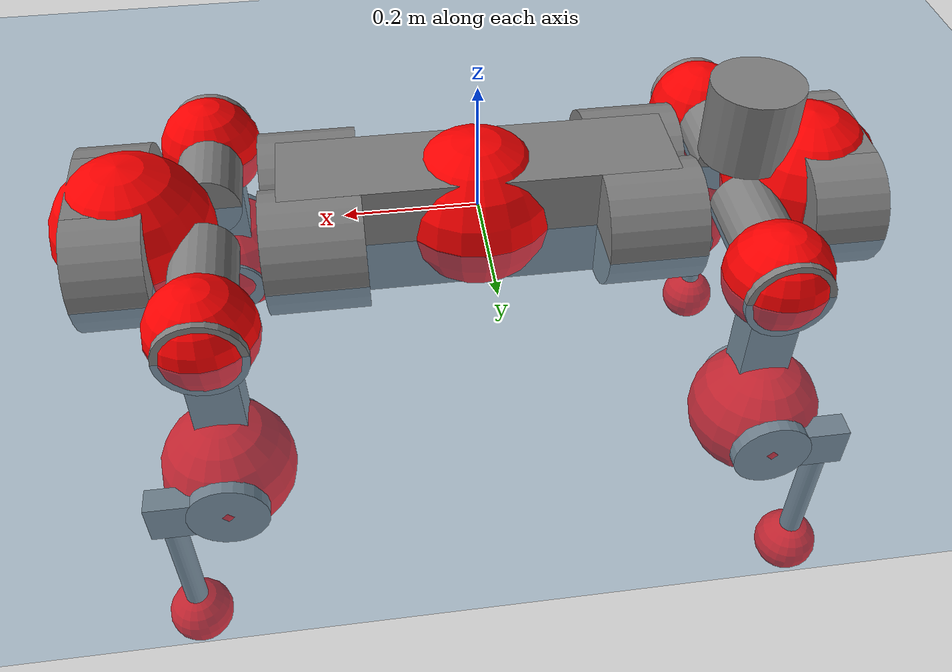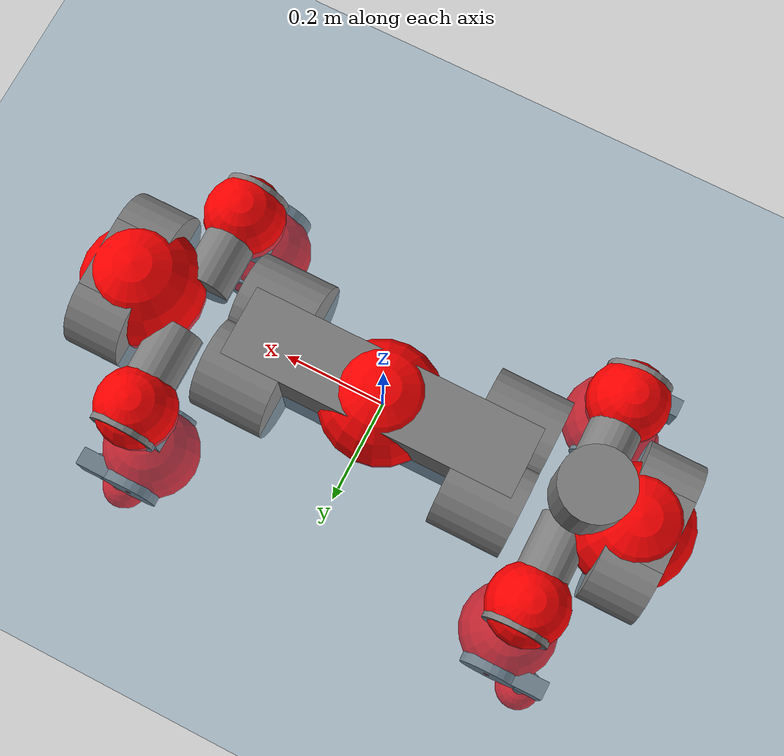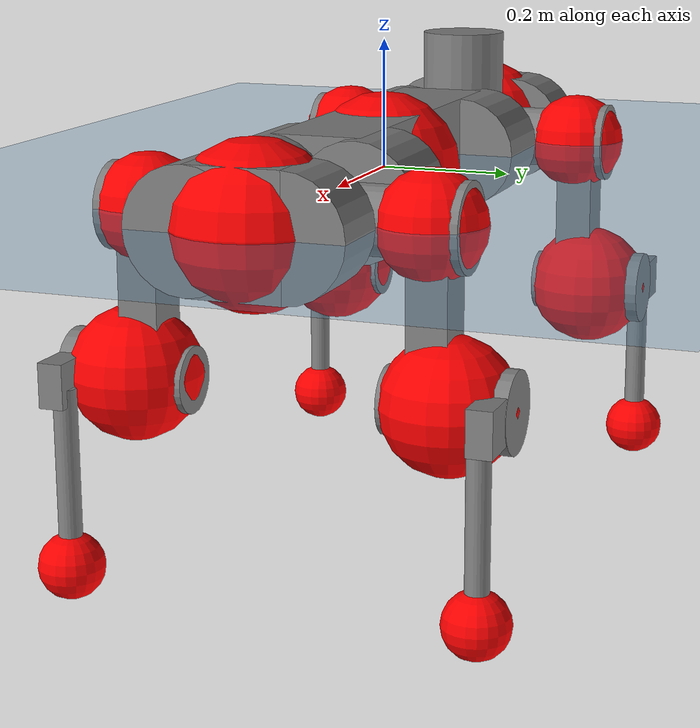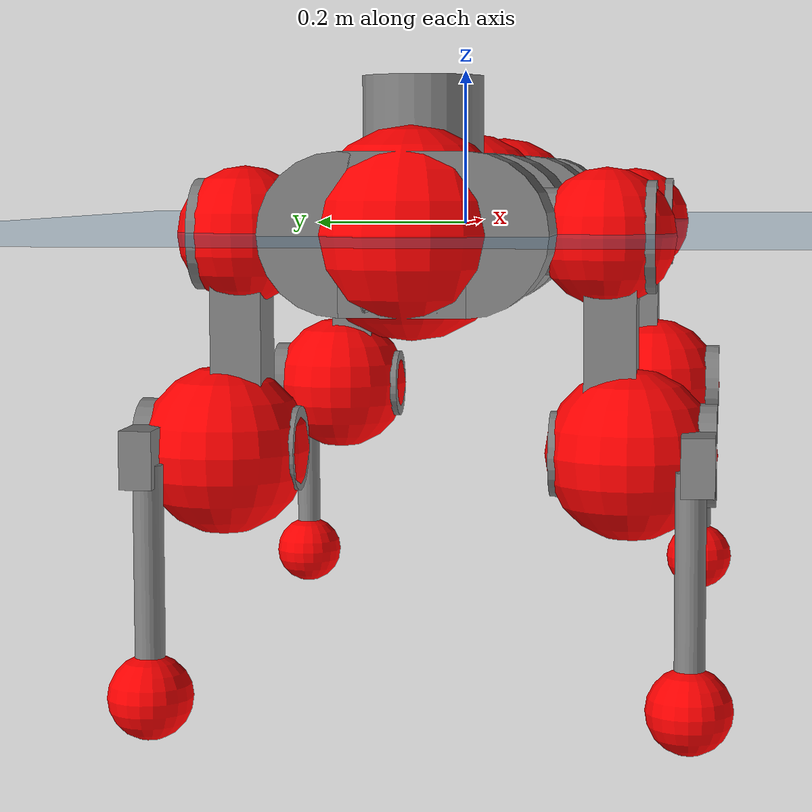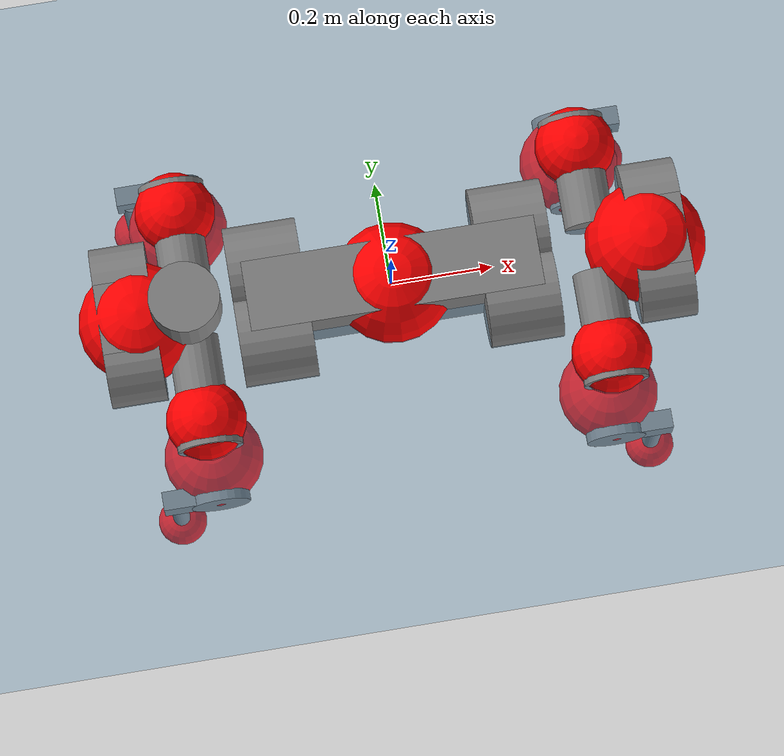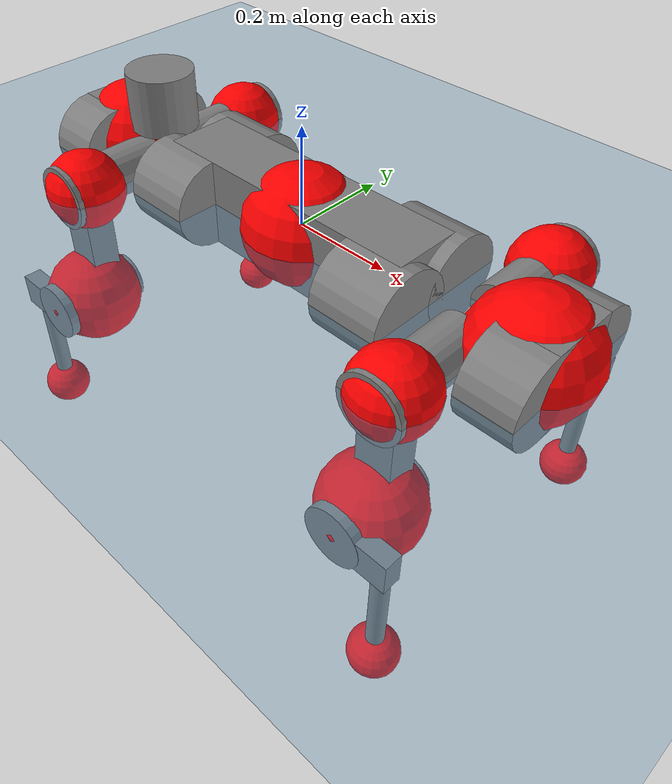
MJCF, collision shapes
<mujoco model="anymal_c">
  <compiler angle="radian" assetdir="assets" balanceinertia="true" inertiafromgeom="false"/>

  <option timestep="0.005" density="1.2" viscosity="2e-05"/>

  <size nkey="1"/>

  <visual>
    <quality shadowsize="8192"/>
    <map shadowclip="0.5"/>
  </visual>

  <default>
    <default class="/">
      <material specular="0" shininess="0.25"/>
      <geom contype="0" conaffinity="0" group="1" solref="-1000 -80"/>
      <site size="0.01 0.005 0.005" group="5"/>
      <general forcelimited="true" forcerange="-80 80" biastype="affine" gainprm="80" biasprm="0 -80 -2"/>
      <default class="anymal_c">
        <joint armature="0.01" damping="0.01" frictionloss="0.1"/>
        <default class="visual">
          <geom type="mesh" group="2"/>
          <default class="visual_zflip"/>
        </default>
        <default class="collision">
          <geom type="cylinder" group="3"/>
          <default class="foot">
            <geom size="0.03 0 0" type="sphere" condim="6" priority="1" friction="0.8 0.02 0.01" solimp="0.015 1 0.03"/>
          </default>
        </default>
      </default>
      <default class="reward_collision_sphere">
        <geom group="5" rgba="1 0 0 1"/>
      </default>
    </default>
  </default>

  <asset>
    <texture type="skybox" colorspace="auto" name="//unnamed_texture_0" builtin="gradient" rgb1="0.95 0.95 0.95" rgb2="0.95 0.95 0.95" width="100" height="600"/>
    <texture type="2d" colorspace="auto" name="texplane" builtin="checker" rgb1="0.345 0.575 0.748" rgb2="0.345 0.575 0.748" markrgb="1 1 1" width="512" height="512"/>
    <texture type="2d" colorspace="linear" name="base" file="base.png"/>
    <texture type="2d" colorspace="linear" name="top_shell" file="top_shell.png"/>
    <texture type="2d" colorspace="linear" name="bottom_shell" file="bottom_shell.png"/>
    <texture type="2d" colorspace="linear" name="remote" file="remote.png"/>
    <texture type="2d" colorspace="linear" name="hatch" file="hatch.png"/>
    <texture type="2d" colorspace="linear" name="handle" file="handle.png"/>
    <texture type="2d" colorspace="linear" name="face" file="face.png"/>
    <texture type="2d" colorspace="linear" name="battery" file="battery.png"/>
    <texture type="2d" colorspace="linear" name="lidar_cage" file="lidar_cage.png"/>
    <texture type="2d" colorspace="linear" name="depth_camera" file="depth_camera.png"/>
    <texture type="2d" colorspace="linear" name="wide_angle_camera" file="wide_angle_camera.png"/>
    <texture type="2d" colorspace="linear" name="lidar" file="lidar.png"/>
    <texture type="2d" colorspace="linear" name="drive" file="drive.png"/>
    <texture type="2d" colorspace="linear" name="hip_l" file="hip_l.png"/>
    <texture type="2d" colorspace="linear" name="shank_l" file="shank_l.png"/>
    <texture type="2d" colorspace="linear" name="foot" file="foot.png"/>
    <texture type="2d" colorspace="linear" name="thigh" file="thigh.png"/>
    <texture type="2d" colorspace="linear" name="shank_r" file="shank_r.png"/>
    <texture type="2d" colorspace="linear" name="hip_r" file="hip_r.png"/>
    <material name="MatPlane" class="/" texture="texplane" texuniform="true" texrepeat="2 2" specular="0.9" shininess="0.5"/>
    <material name="black_plastic" class="/" rgba="0.007 0.007 0.007 1"/>
    <material name="green" class="/" rgba="0.052 0.178 0.033 1"/>
    <material name="red" class="/" rgba="0.178 0.006 0.005 1"/>
    <material name="yellow" class="/" rgba="0.178 0.119 0.006 1"/>
    <material name="lwl" class="/" rgba="0.8 0.8 0.8 1"/>
    <material name="base" class="/" texture="base"/>
    <material name="top_shell" class="/" texture="top_shell"/>
    <material name="bottom_shell" class="/" texture="bottom_shell"/>
    <material name="hip_l" class="/" texture="hip_l"/>
    <material name="thigh" class="/" texture="thigh"/>
    <material name="shank_l" class="/" texture="shank_l"/>
    <material name="foot" class="/" texture="foot"/>
    <material name="hip_r" class="/" texture="hip_r"/>
    <material name="shank" class="/" texture="shank_r"/>
    <material name="hatch" class="/" texture="hatch"/>
    <material name="remote" class="/" texture="remote"/>
    <material name="handle" class="/" texture="handle"/>
    <material name="face" class="/" texture="face"/>
    <material name="depth_camera" class="/" texture="depth_camera"/>
    <material name="wide_angle_camera" class="/" texture="wide_angle_camera"/>
    <material name="battery" class="/" texture="battery"/>
    <material name="lidar_cage" class="/" texture="lidar_cage"/>
    <material name="lidar" class="/" texture="lidar"/>
    <material name="drive" class="/" texture="drive"/>
    <mesh name="base_0" class="/" file="base_0.obj"/>
    <mesh name="base_1" class="/" file="base_1.obj"/>
    <mesh name="base_2" class="/" file="base_2.obj"/>
    <mesh name="base_3" class="/" file="base_3.obj"/>
    <mesh name="base_4" class="/" file="base_4.obj"/>
    <mesh name="base_5" class="/" file="base_5.obj"/>
    <mesh name="top_shell" class="/" file="top_shell.obj"/>
    <mesh name="bottom_shell" class="/" file="bottom_shell.obj"/>
    <mesh name="remote" class="/" file="remote.obj"/>
    <mesh name="handle" class="/" file="handle.obj"/>
    <mesh name="face" class="/" file="face.obj"/>
    <mesh name="wide_angle_camera" class="/" file="wide_angle_camera.obj"/>
    <mesh name="depth_camera" class="/" file="depth_camera.obj"/>
    <mesh name="battery" class="/" file="battery.obj"/>
    <mesh name="lidar_cage" class="/" file="lidar_cage.obj"/>
    <mesh name="lidar" class="/" file="lidar.obj"/>
    <mesh name="drive" class="/" file="drive.obj"/>
    <mesh name="hip_l" class="/" file="hip_l.obj"/>
    <mesh name="thigh" class="/" file="thigh.obj"/>
    <mesh name="shank_l" class="/" file="shank_l.obj"/>
    <mesh name="foot" class="/" file="foot.obj"/>
    <mesh name="hip_r" class="/" file="hip_r.obj"/>
    <mesh name="hatch" class="/" file="hatch.obj"/>
    <mesh name="shank_r" class="/" file="shank_r.obj"/>
  </asset>

  <worldbody>
    <geom name="floor" class="/" size="100 100 0.125" type="plane" group="0" material="MatPlane"/>
    <light name="toplight_shadow" class="/" pos="0 0 5" dir="0.0990148 0.0990148 -0.990148" type="directional" ambient="0.04 0.04 0.04" diffuse="0.55 0.55 0.55" specular="0.12 0.12 0.12"/>
    <light name="toplight_fill" class="/" pos="0 0 5" dir="0.0990148 0.0990148 -0.990148" type="directional" castshadow="false" ambient="0.04 0.04 0.04" diffuse="0.3 0.3 0.3" specular="0.08 0.08 0.08"/>
    <body name="trunk" childclass="anymal_c" pos="0.00276349 0.000492137 0.000272212" quat="1 -0.000140715 -0.000363798 -0.000103177">
      <inertial pos="0.00258493 0.00125011 0.0419203" quat="0.497975 0.497315 0.507017 0.497626" mass="18.7552" diaginertia="1.1687 0.621743 0.110318"/>
      <joint name="//unnamed_joint_0" type="free" armature="0" damping="0" frictionloss="0"/>
      <geom name="//unnamed_geom_1" class="visual" material="green" mesh="base_0"/>
      <geom name="//unnamed_geom_2" class="visual" material="yellow" mesh="base_1"/>
      <geom name="//unnamed_geom_3" class="visual" material="red" mesh="base_2"/>
      <geom name="//unnamed_geom_4" class="visual" material="black_plastic" mesh="base_3"/>
      <geom name="//unnamed_geom_5" class="visual" material="lwl" mesh="base_4"/>
      <geom name="//unnamed_geom_6" class="visual" material="base" mesh="base_5"/>
      <geom name="trunk_1" class="collision" size="0.28761 0.069423 0.0892582" type="box"/>
      <geom name="trunk_2" class="collision" size="0.0892582 0.0719024" pos="0.242082 0.0691969 0" quat="0.707107 0 0.707107 0"/>
      <geom name="trunk_3" class="collision" size="0.0892582 0.0719024" pos="-0.242082 0.0691969 0" quat="0.707107 0 0.707107 0"/>
      <geom name="trunk_4" class="collision" size="0.0892582 0.0719024" pos="0.242082 -0.0691969 0" quat="0.707107 0 0.707107 0"/>
      <geom name="trunk_5" class="collision" size="0.0892582 0.0719024" pos="-0.242082 -0.0691969 0" quat="0.707107 0 0.707107 0"/>
      <geom name="//unnamed_geom_12" class="visual" material="top_shell" mesh="top_shell"/>
      <geom name="//unnamed_geom_13" class="visual" material="bottom_shell" mesh="bottom_shell"/>
      <geom name="//unnamed_geom_14" class="visual" material="remote" mesh="remote"/>
      <geom name="//unnamed_geom_15" class="visual" material="handle" mesh="handle"/>
      <geom name="//unnamed_geom_16" class="visual" pos="0.461346 0 0" quat="1 0 0 0" material="face" mesh="face"/>
      <geom name="trunk_6" class="collision" size="0.0545467 0.069423 0.0892582" pos="0.522562 0 0" type="box"/>
      <geom name="//unnamed_geom_18" class="collision" size="0.0892582 0.0545467" pos="0.522562 0.0691969 0" quat="0.707107 0 0.707107 0"/>
      <geom name="//unnamed_geom_19" class="collision" size="0.0892582 0.0545467" pos="0.522562 -0.0691969 0" quat="0.707107 0 0.707107 0"/>
      <geom name="//unnamed_geom_20" class="visual" pos="0.513815 0 -0.0236942" quat="0.965926 0 0.258819 0" material="depth_camera" mesh="depth_camera"/>
      <geom name="//unnamed_geom_21" class="visual" pos="0.570979 0 0.0130797" material="wide_angle_camera" mesh="wide_angle_camera"/>
      <geom name="//unnamed_geom_22" class="visual_zflip" pos="-0.461346 0 0" quat="0 0 0 1" material="face" mesh="face"/>
      <geom name="trunk_7" class="collision" size="0.0545467 0.069423 0.0892582" pos="-0.522562 0 0" quat="0 0 0 1" type="box"/>
      <geom name="//unnamed_geom_24" class="collision" size="0.0892582 0.0545467" pos="-0.522562 -0.0691969 0" quat="0 -0.707107 0 0.707107"/>
      <geom name="//unnamed_geom_25" class="collision" size="0.0892582 0.0545467" pos="-0.522562 0.0691969 0" quat="0 -0.707107 0 0.707107"/>
      <geom name="//unnamed_geom_26" class="visual" pos="-0.513815 0 -0.0236942" quat="0 -0.258819 0 0.965926" material="depth_camera" mesh="depth_camera"/>
      <geom name="//unnamed_geom_27" class="visual_zflip" pos="-0.570979 0 0.0130797" quat="0 0 0 1" material="wide_angle_camera" mesh="wide_angle_camera"/>
      <geom name="//unnamed_geom_28" class="visual" material="battery" mesh="battery"/>
      <geom name="//unnamed_geom_29" class="visual" pos="0 0.0739393 0.0272004" quat="0.683013 -0.183013 0.183013 0.683013" material="depth_camera" mesh="depth_camera"/>
      <geom name="//unnamed_geom_30" class="visual" pos="0 -0.0739393 0.0272004" quat="0.683013 0.183013 0.183013 -0.683013" material="depth_camera" mesh="depth_camera"/>
      <geom name="//unnamed_geom_31" class="visual" pos="-0.405139 0 0.0642189" quat="1 0 0 0" material="lidar_cage" mesh="lidar_cage"/>
      <geom name="trunk_8" class="collision" size="0.069423 0.0595055" pos="-0.405139 0 0.116643"/>
      <geom name="//unnamed_geom_33" class="visual" pos="-0.405139 -4.89093e-05 0.124244" quat="0.707107 0 0 -0.707107" material="lidar" mesh="lidar"/>
      <geom name="//unnamed_geom_34" class="visual" pos="0.333794 0.102766 1.98033e-09" quat="0.258819 0.965926 0 0" material="drive" mesh="drive"/>
      <geom name="//unnamed_geom_35" class="visual" pos="0.333794 -0.102766 -1.98033e-09" quat="0.258819 -0.965926 0 0" material="drive" mesh="drive"/>
      <geom name="//unnamed_geom_36" class="visual" pos="-0.333794 0.102766 -1.98033e-09" quat="0 0 0.965926 -0.258819" material="drive" mesh="drive"/>
      <geom name="//unnamed_geom_37" class="visual" pos="-0.333794 -0.102766 1.98033e-09" quat="0 0 -0.965926 -0.258819" material="drive" mesh="drive"/>
      <geom name="//unnamed_geom_38" class="visual" pos="0.12911 0 0.063782" quat="1 0 0 0" material="hatch" mesh="hatch"/>
      <geom name="//unnamed_geom_39" class="reward_collision_sphere" size="0.119011"/>
      <geom name="//unnamed_geom_40" class="reward_collision_sphere" size="0.119011" pos="0.500859 0 0"/>
      <geom name="//unnamed_geom_41" class="reward_collision_sphere" size="0.119011" pos="-0.500859 0 0"/>
      <site name="imu" pos="0.274075 0.0132193 0.0279866" size="0.00991758"/>
      <camera name="track" pos="0 -1.97706 0" quat="0.707107 0.707107 0 0" mode="trackcom"/>
      <camera name="ego_camera" pos="0.500859 0 -0.0349491" quat="-0.5 -0.5 0.5 0.5"/>
      <body name="LF_HIP" pos="0.332864 0.103279 -0.00208036" quat="0.259988 0.965612 -0.000389588 -0.000451997">
        <inertial pos="0.060485 -0.0153236 -0.0074715" quat="-0.127973 0.709709 -0.13501 0.679492" mass="2.73239" diaginertia="0.0100829 0.0044718 0.00168665"/>
        <joint name="LF_HAA" pos="0 0 0" axis="0.999938 -0.00753281 -0.00824359" range="-0.710946 0.492347" armature="0.00870795" damping="0.00462193" frictionloss="0.105719"/>
        <geom name="//unnamed_geom_42" class="visual" pos="0 0.000116494 -1.9134e-05" quat="0.258819 -0.965926 0 0" material="hip_l" mesh="hip_l"/>
        <geom name="//unnamed_geom_43" class="visual" pos="0.0666698 -0.0791048 -0.044822" quat="0.183013 -0.683013 0.683013 0.183013" material="drive" mesh="drive"/>
        <geom name="//unnamed_geom_44" class="collision" size="0.0495879 0.069423" pos="0.0666698 -0.0118226 -0.00603308" quat="-0.353553 -0.612372 0.612372 -0.353553"/>
        <body name="LF_THIGH" pos="0.0649333 -0.0723621 -0.0383339" quat="0.183262 -0.682766 0.683248 0.182806">
          <inertial pos="0.0342799 -1.60913e-05 -0.216918" quat="0.992637 -0.00530682 -0.0865028 0.0846203" mass="2.99897" diaginertia="0.0519531 0.0281661 0.00211565"/>
          <joint name="LF_HFE" pos="0 0 0" axis="0.999958 0.00910438 -0.00120935" range="-3.13358 3.13875" armature="0.0114313" damping="0" frictionloss="0.0897431"/>
          <geom name="//unnamed_geom_45" class="visual" pos="0.00247689 3.903e-06 0" quat="0.707107 0 0 -0.707107" material="thigh" mesh="thigh"/>
          <geom name="//unnamed_geom_46" class="collision" size="0.0644643 0.0396703" pos="0.0445208 0 0" quat="0.5 0.5 -0.5 -0.5"/>
          <geom name="//unnamed_geom_47" class="collision" size="0.0371909 0.0297527 0.140149" pos="0.0333906 0 -0.12347" quat="0.707107 0 0 -0.707107" type="box"/>
          <geom name="//unnamed_geom_48" class="visual" pos="0.111636 0 -0.249012" quat="1 0 0 0" material="drive" mesh="drive"/>
          <geom name="//unnamed_geom_49" class="collision" size="0.0495879 0.069423" pos="0.0337245 0 -0.249012" quat="0.707107 0 0.707107 0"/>
          <geom name="//unnamed_geom_50" class="reward_collision_sphere" size="0.0793406" pos="0.0278255 0 0"/>
          <body name="LF_SHANK" pos="0.111538 -0.0025484 -0.248404" quat="0.999999 -0.000693498 -0.000516331 -0.000841732">
            <inertial pos="0.0073488 -0.0596326 -0.0702117" quat="0.992321 -0.122639 -0.00556357 -0.0150849" mass="0.604357" diaginertia="0.0172112 0.00893539 0.000564263"/>
            <joint name="LF_KFE" pos="0 0 0" axis="1 0.0003141 -0.000909688" stiffness="0.000129619" range="-3.13517 3.161" armature="0.0101844" damping="0" frictionloss="0.0960879"/>
            <geom name="//unnamed_geom_51" class="visual" pos="0.000807659 0.00430648 0" quat="0.707107 0 0 -0.707107" material="shank_l" mesh="shank_l"/>
            <geom name="LF_kfe_act" class="collision" size="0.0595055 0.0198352" pos="0.0222604 0 0" quat="0.5 0.5 -0.5 -0.5"/>
            <geom name="//unnamed_geom_53" class="collision" size="0.0570251 0.0334718 0.0188434" pos="0.0222604 -0.0568393 0" quat="0.5 0.5 -0.5 -0.5" type="box"/>
            <geom name="//unnamed_geom_54" class="visual" pos="0.0145247 -0.0855532 -0.295293" quat="0.382683 0 0 -0.92388" material="foot" mesh="foot"/>
            <geom name="LF_calf" class="collision" size="0.0173558 0.140088" pos="0.0145249 -0.086941 -0.147647" quat="0.707107 0 0 -0.707107"/>
            <geom name="LF_foot" class="foot" size="0.0324525" pos="0.0145249 -0.086941 -0.275635" quat="0.707107 0 0 -0.707107"/>
            <geom name="//unnamed_geom_57" class="reward_collision_sphere" size="0.0991758" pos="-0.0556509 0 0"/>
            <geom name="//unnamed_geom_58" class="reward_collision_sphere" size="0.0495879" pos="0.0145249 -0.086941 -0.275635"/>
            <site name="LF_foot" class="foot" pos="0.0145249 -0.086941 -0.275635" quat="0.707107 0 0 -0.707107" size="0.00991758"/>
          </body>
        </body>
      </body>
      <body name="RF_HIP" pos="0.331724 -0.101023 -0.00176444" quat="0.258906 -0.965902 -0.000299678 0.000513842">
        <inertial pos="0.0655974 0.0152428 -0.00997345" quat="0.139356 0.685786 0.127731 0.702824" mass="2.7632" diaginertia="0.0103319 0.00465112 0.00172938"/>
        <joint name="RF_HAA" pos="0 0 0" axis="0.99988 -0.014977 0.00388009" range="-0.545868 0.702655" armature="0.00969563" damping="0.00483763" frictionloss="0.0852789"/>
        <geom name="//unnamed_geom_59" class="visual" pos="0 -0.000116493 -1.91339e-05" quat="0.258819 0.965926 0 0" material="hip_r" mesh="hip_r"/>
        <geom name="//unnamed_geom_60" class="visual" pos="0.0666698 0.0791048 -0.044822" quat="0.183013 0.683013 0.683013 -0.183013" material="drive" mesh="drive"/>
        <geom name="//unnamed_geom_61" class="collision" size="0.0495879 0.069423" pos="0.0666698 0.0118226 -0.00603308" quat="-0.353553 0.612372 0.612372 0.353553"/>
        <body name="RF_THIGH" pos="0.0669403 0.0708856 -0.0354787" quat="0.18274 0.683301 0.682811 -0.182961">
          <inertial pos="0.0329233 0.00193948 -0.214925" quat="0.992695 -0.00515327 -0.0810745 0.0892062" mass="2.99183" diaginertia="0.0521495 0.0278147 0.00213276"/>
          <joint name="RF_HFE" pos="0 0 0" axis="0.999984 0.00331438 0.00462665" stiffness="0.00558047" range="-3.12274 3.16846" armature="0.010194" damping="0" frictionloss="0.0940133"/>
          <geom name="//unnamed_geom_62" class="visual" pos="0.00247689 3.903e-06 0" quat="0.707107 0 0 -0.707107" material="thigh" mesh="thigh"/>
          <geom name="//unnamed_geom_63" class="collision" size="0.0644643 0.0396703" pos="0.0445208 0 0" quat="0.5 0.5 0.5 0.5"/>
          <geom name="//unnamed_geom_64" class="collision" size="0.0371909 0.0297527 0.140149" pos="0.0333906 0 -0.12347" quat="0.707107 0 0 0.707107" type="box"/>
          <geom name="//unnamed_geom_65" class="visual" pos="0.111636 0 -0.249012" quat="1 0 0 0" material="drive" mesh="drive"/>
          <geom name="//unnamed_geom_66" class="collision" size="0.0495879 0.069423" pos="0.0337245 0 -0.249012" quat="0.707107 0 0.707107 0"/>
          <geom name="//unnamed_geom_67" class="reward_collision_sphere" size="0.0793406" pos="0.0278255 0 0"/>
          <body name="RF_SHANK" pos="0.112499 -0.00027469 -0.245488" quat="0.999999 -0.000137611 0.00114294 -0.000339239">
            <inertial pos="0.00813518 0.0582417 -0.0674954" quat="0.992855 0.116199 -0.00629984 0.0264073" mass="0.561146" diaginertia="0.0179184 0.00914426 0.000594598"/>
            <joint name="RF_KFE" pos="0 0 0" axis="0.999965 0.00475792 -0.00693073" stiffness="0.00661104" range="-3.18951 3.14125" armature="0.00939487" damping="0.0212122" frictionloss="0.112972"/>
            <geom name="//unnamed_geom_68" class="visual" pos="0.000807655 -0.00430647 0" quat="0.707107 0 0 0.707107" material="shank" mesh="shank_r"/>
            <geom name="RF_kfe_act" class="collision" size="0.0595055 0.0198352" pos="0.0222604 0 0" quat="0.5 0.5 0.5 0.5"/>
            <geom name="//unnamed_geom_70" class="collision" size="0.0570251 0.0334718 0.0188434" pos="0.0222604 0.0568393 0" quat="0.5 0.5 0.5 0.5" type="box"/>
            <geom name="//unnamed_geom_71" class="visual" pos="0.0145251 0.0855532 -0.295293" quat="0.382683 0 0 0.92388" material="foot" mesh="foot"/>
            <geom name="RF_calf" class="collision" size="0.0173558 0.140088" pos="0.0145249 0.086941 -0.147647" quat="0.707107 0 0 0.707107"/>
            <geom name="RF_foot" class="foot" size="0.0301865" pos="0.0145249 0.086941 -0.275635" quat="0.707107 0 0 0.707107"/>
            <geom name="//unnamed_geom_74" class="reward_collision_sphere" size="0.0991758" pos="-0.0556509 0 0"/>
            <geom name="//unnamed_geom_75" class="reward_collision_sphere" size="0.0495879" pos="0.0145249 0.086941 -0.275635"/>
            <site name="RF_foot" class="foot" pos="0.0145249 0.086941 -0.275635" quat="0.707107 0 0 0.707107" size="0.00991758"/>
          </body>
        </body>
      </body>
      <body name="LH_HIP" pos="-0.331534 0.100237 0.000523859" quat="6.15016e-05 -0.000278201 0.965986 -0.258593">
        <inertial pos="0.0657795 0.0129073 -0.00755834" quat="0.137347 0.670011 0.135985 0.716749" mass="2.6703" diaginertia="0.010095 0.00464003 0.00161822"/>
        <joint name="LH_HAA" pos="0 0 0" axis="0.999969 -0.00510952 -0.00604263" range="-0.445033 0.734604" armature="0.00998139" damping="0.0100819" frictionloss="0.0989011"/>
        <geom name="//unnamed_geom_76" class="visual" pos="0 -0.000116493 -1.91339e-05" quat="-0.258819 -0.965926 0 0" material="hip_r" mesh="hip_r"/>
        <geom name="//unnamed_geom_77" class="visual" pos="0.0666698 0.0791048 -0.044822" quat="0.183013 0.683013 0.683013 -0.183013" material="drive" mesh="drive"/>
        <geom name="//unnamed_geom_78" class="collision" size="0.0495879 0.069423" pos="0.0666698 0.0118226 -0.00603308" quat="-0.353553 0.612372 0.612372 0.353553"/>
        <body name="LH_THIGH" pos="0.0675355 0.0726075 -0.0359815" quat="0.183409 0.682886 0.682992 -0.183167">
          <inertial pos="0.0334022 0.0024215 -0.214622" quat="0.994232 -0.000412918 -0.0711008 0.0803003" mass="3.05393" diaginertia="0.0517089 0.029099 0.00213814"/>
          <joint name="LH_HFE" pos="0 0 0" axis="0.999904 -0.0117093 -0.00745193" range="-3.09273 3.18431" armature="0.0112395" damping="0.00946944" frictionloss="0.113106"/>
          <geom name="//unnamed_geom_79" class="visual" pos="0.00247689 3.903e-06 0" quat="0.707107 0 0 -0.707107" material="thigh" mesh="thigh"/>
          <geom name="//unnamed_geom_80" class="collision" size="0.0644643 0.0396703" pos="0.0445208 0 0" quat="0.5 0.5 -0.5 -0.5"/>
          <geom name="//unnamed_geom_81" class="collision" size="0.0371909 0.0297527 0.140149" pos="0.0333906 0 -0.12347" quat="0.707107 0 0 -0.707107" type="box"/>
          <geom name="//unnamed_geom_82" class="visual" pos="0.111636 0 -0.249012" quat="1 0 0 0" material="drive" mesh="drive"/>
          <geom name="//unnamed_geom_83" class="collision" size="0.0495879 0.069423" pos="0.0337245 0 -0.249012" quat="0.707107 0 0.707107 0"/>
          <geom name="//unnamed_geom_84" class="reward_collision_sphere" size="0.0793406" pos="0.0278255 0 0"/>
          <body name="LH_SHANK" pos="0.109666 0.00214123 -0.251529" quat="0.999999 -0.00058461 0.000487407 0.000927462">
            <inertial pos="0.0053987 0.0603004 -0.0684966" quat="0.992226 0.120395 0.0033047 0.0313299" mass="0.555204" diaginertia="0.017269 0.00861616 0.000574286"/>
            <joint name="LH_KFE" pos="0 0 0" axis="1 -0.000288846 -0.000385603" range="-3.16191 3.09482" armature="0.00948358" damping="0.0110768" frictionloss="0.0855725"/>
            <geom name="//unnamed_geom_85" class="visual" pos="0.000807655 -0.00430647 0" quat="-0.707107 0 0 -0.707107" material="shank" mesh="shank_r"/>
            <geom name="LH_kfe_act" class="collision" size="0.0595055 0.0198352" pos="0.0222604 0 0" quat="0.5 0.5 -0.5 -0.5"/>
            <geom name="//unnamed_geom_87" class="collision" size="0.0570251 0.0334718 0.0188434" pos="0.0222604 0.0568393 0" quat="0.5 0.5 -0.5 -0.5" type="box"/>
            <geom name="//unnamed_geom_88" class="visual" pos="0.0145251 0.0855532 -0.295293" quat="-0.382683 0 0 -0.92388" material="foot" mesh="foot"/>
            <geom name="LH_calf" class="collision" size="0.0173558 0.140088" pos="0.0145249 0.086941 -0.147647" quat="0.707107 0 0 -0.707107"/>
            <geom name="LH_foot" class="foot" size="0.0272913" pos="0.0145249 0.086941 -0.275635" quat="0.707107 0 0 -0.707107"/>
            <geom name="//unnamed_geom_91" class="reward_collision_sphere" size="0.0991758" pos="-0.0556509 0 0"/>
            <geom name="//unnamed_geom_92" class="reward_collision_sphere" size="0.0495879" pos="0.0145249 0.086941 -0.275635"/>
            <site name="LH_foot" class="foot" pos="0.0145249 0.086941 -0.275635" quat="0.707107 0 0 -0.707107" size="0.00991758"/>
          </body>
        </body>
      </body>
      <body name="RH_HIP" pos="-0.336171 -0.102888 0.000314345" quat="-1.71988e-05 4.05568e-05 -0.965911 -0.258876">
        <inertial pos="0.0656966 -0.0136458 -0.00781968" quat="-0.132948 0.707188 -0.124564 0.683149" mass="2.75267" diaginertia="0.0103822 0.00484241 0.00174455"/>
        <joint name="RH_HAA" pos="0 0 0" axis="0.99992 0.00945152 -0.00838711" range="-0.725528 0.493207" armature="0.00979239" damping="0.0177233" frictionloss="0.101919"/>
        <geom name="//unnamed_geom_93" class="visual" pos="0 0.000116494 -1.9134e-05" quat="-0.258819 0.965926 0 0" material="hip_l" mesh="hip_l"/>
        <geom name="//unnamed_geom_94" class="visual" pos="0.0666698 -0.0791048 -0.044822" quat="-0.183013 0.683013 -0.683013 -0.183013" material="drive" mesh="drive"/>
        <geom name="//unnamed_geom_95" class="collision" size="0.0495879 0.069423" pos="0.0666698 -0.0118226 -0.00603308" quat="0.353553 0.612372 -0.612372 0.353553"/>
        <body name="RH_THIGH" pos="0.0652842 -0.0720542 -0.0340059" quat="-0.183045 0.682952 -0.683082 -0.182949">
          <inertial pos="0.0339388 0.000481712 -0.21464" quat="0.993628 -0.0147539 -0.0785858 0.0794341" mass="3.0399" diaginertia="0.0517542 0.0293543 0.00219877"/>
          <joint name="RH_HFE" pos="0 0 0" axis="0.999983 0.00268385 0.00517627" range="-3.13005 3.15228" armature="0.0111675" damping="0" frictionloss="0.0922217"/>
          <geom name="//unnamed_geom_96" class="visual" pos="0.00247689 3.903e-06 0" quat="0.707107 0 0 -0.707107" material="thigh" mesh="thigh"/>
          <geom name="//unnamed_geom_97" class="collision" size="0.0644643 0.0396703" pos="0.0445208 0 0" quat="0.5 0.5 0.5 0.5"/>
          <geom name="//unnamed_geom_98" class="collision" size="0.0371909 0.0297527 0.140149" pos="0.0333906 0 -0.12347" quat="0.707107 0 0 0.707107" type="box"/>
          <geom name="//unnamed_geom_99" class="visual" pos="0.111636 0 -0.249012" quat="1 0 0 0" material="drive" mesh="drive"/>
          <geom name="//unnamed_geom_100" class="collision" size="0.0495879 0.069423" pos="0.0337245 0 -0.249012" quat="0.707107 0 0.707107 0"/>
          <geom name="//unnamed_geom_101" class="reward_collision_sphere" size="0.0793406" pos="0.0278255 0 0"/>
          <body name="RH_SHANK" pos="0.111892 9.24931e-05 -0.24884" quat="1 -8.45289e-05 -0.000410951 -8.18647e-06">
            <inertial pos="0.00337869 -0.0628495 -0.0679248" quat="0.992925 -0.115923 -0.00126982 -0.0257053" mass="0.598892" diaginertia="0.0169737 0.00909852 0.000572252"/>
            <joint name="RH_KFE" pos="0 0 0" axis="0.999998 -0.00195107 -0.000781651" range="-3.12085 3.18823" armature="0.00997337" damping="0.00522556" frictionloss="0.111739"/>
            <geom name="//unnamed_geom_102" class="visual" pos="0.000807659 0.00430648 0" quat="0.707107 0 0 -0.707107" material="shank_l" mesh="shank_l"/>
            <geom name="RH_kfe_act" class="collision" size="0.0595055 0.0198352" pos="0.0222604 0 0" quat="0.5 0.5 0.5 0.5"/>
            <geom name="//unnamed_geom_104" class="collision" size="0.0570251 0.0334718 0.0188434" pos="0.0222604 -0.0568393 0" quat="0.5 0.5 0.5 0.5" type="box"/>
            <geom name="//unnamed_geom_105" class="visual" pos="0.0145247 -0.0855532 -0.295293" quat="0.382683 0 0 -0.92388" material="foot" mesh="foot"/>
            <geom name="RH_calf" class="collision" size="0.0173558 0.140088" pos="0.0145249 -0.086941 -0.147647" quat="0.707107 0 0 0.707107"/>
            <geom name="RH_foot" class="foot" size="0.0310569" pos="0.0145249 -0.086941 -0.275635" quat="0.707107 0 0 0.707107"/>
            <geom name="//unnamed_geom_108" class="reward_collision_sphere" size="0.0991758" pos="-0.0556509 0 0"/>
            <geom name="//unnamed_geom_109" class="reward_collision_sphere" size="0.0495879" pos="0.0145249 -0.086941 -0.275635"/>
            <site name="RH_foot" class="foot" pos="0.0145249 -0.086941 -0.275635" quat="0.707107 0 0 0.707107" size="0.00991758"/>
          </body>
        </body>
      </body>
    </body>
  </worldbody>

  <contact>
    <pair class="/" geom1="floor" geom2="LF_foot" name="//unnamed_contact_0"/>
    <pair class="/" geom1="floor" geom2="RF_foot" name="//unnamed_contact_1"/>
    <pair class="/" geom1="floor" geom2="LH_foot" name="//unnamed_contact_2"/>
    <pair class="/" geom1="floor" geom2="RH_foot" name="//unnamed_contact_3"/>
  </contact>

  <actuator>
    <general name="LF_HAA" class="/" joint="LF_HAA" forcerange="-80.2352 80.2352" gainprm="79.309" biasprm="0 -79.309 -2.039"/>
    <general name="LF_HFE" class="/" joint="LF_HFE" forcerange="-71.1274 71.1274" gainprm="79.309" biasprm="0 -79.309 -2.039"/>
    <general name="LF_KFE" class="/" joint="LF_KFE" forcerange="-82.7483 82.7483" gainprm="79.309" biasprm="0 -79.309 -2.039"/>
    <general name="RF_HAA" class="/" joint="RF_HAA" forcerange="-79.6155 79.6155" gainprm="79.309" biasprm="0 -79.309 -2.039"/>
    <general name="RF_HFE" class="/" joint="RF_HFE" forcerange="-76.9349 76.9349" gainprm="79.309" biasprm="0 -79.309 -2.039"/>
    <general name="RF_KFE" class="/" joint="RF_KFE" forcerange="-85.8649 85.8649" gainprm="79.309" biasprm="0 -79.309 -2.039"/>
    <general name="LH_HAA" class="/" joint="LH_HAA" forcerange="-79.3807 79.3807" gainprm="79.309" biasprm="0 -79.309 -2.039"/>
    <general name="LH_HFE" class="/" joint="LH_HFE" forcerange="-86.7079 86.7079" gainprm="79.309" biasprm="0 -79.309 -2.039"/>
    <general name="LH_KFE" class="/" joint="LH_KFE" forcerange="-75.6321 75.6321" gainprm="79.309" biasprm="0 -79.309 -2.039"/>
    <general name="RH_HAA" class="/" joint="RH_HAA" forcerange="-78.9591 78.9591" gainprm="79.309" biasprm="0 -79.309 -2.039"/>
    <general name="RH_HFE" class="/" joint="RH_HFE" forcerange="-79.6634 79.6634" gainprm="79.309" biasprm="0 -79.309 -2.039"/>
    <general name="RH_KFE" class="/" joint="RH_KFE" forcerange="-72.7756 72.7756" gainprm="79.309" biasprm="0 -79.309 -2.039"/>
  </actuator>

  <sensor>
    <gyro site="imu" name="imu_angular_velocity"/>
    <velocimeter site="imu" name="imu_linear_velocity"/>
    <framelinvel objtype="site" objname="LF_foot" name="LF_foot_global_linear_velocity"/>
    <framelinvel objtype="site" objname="RF_foot" name="RF_foot_global_linear_velocity"/>
    <framelinvel objtype="site" objname="LH_foot" name="LH_foot_global_linear_velocity"/>
    <framelinvel objtype="site" objname="RH_foot" name="RH_foot_global_linear_velocity"/>
  </sensor>

  <keyframe>
    <key name="home" qpos="0 0 0.55 1 0 0 0 0 0.4 -0.8 0 -0.4 0.8 0 -0.4 0.8 0 0.4 -0.8"/>
  </keyframe>
</mujoco>
